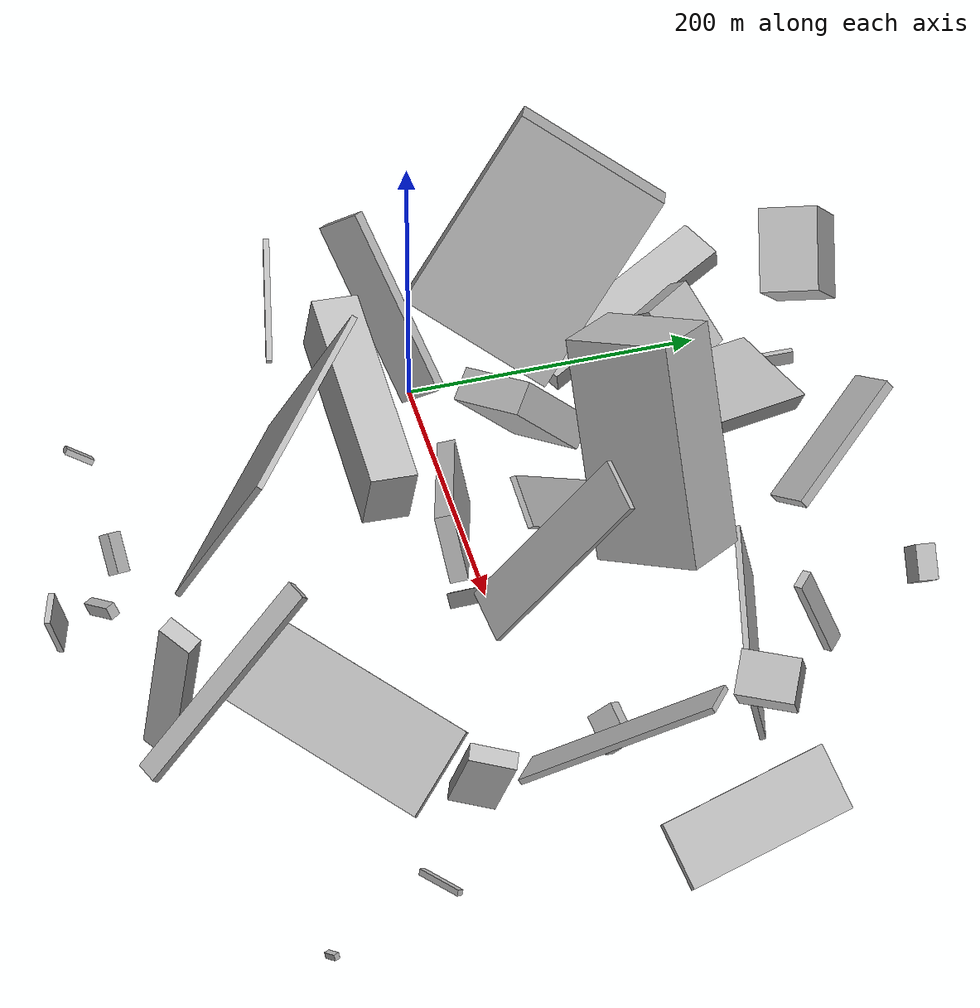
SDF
<sdf version="1.6">
 <world name="default">
  <scene>
   <sky><clouds><speed>12</speed></clouds></sky>
   <ambient>0.4 0.4 0.4 1</ambient>
   <background>0.7 0.7 0.7 1</background>
   <shadows>1</shadows>
  </scene>
  <gravity>0 0 -9.8066</gravity>
  <magnetic_field>6e-06 2.3e-05 -4.2e-05</magnetic_field>
  <physics default="0" name="default_physics" type="ode">
   <ode>
    <solver>
     <type>quick</type>
     <iters>10</iters>
     <sor>1.0</sor>
     <use_dynamic_moi_rescaling>0</use_dynamic_moi_rescaling>
    </solver>
    <constraints>
     <cfm>0</cfm>
     <erp>0.2</erp>
     <contact_max_correcting_vel>100</contact_max_correcting_vel>
     <contact_surface_layer>0.001</contact_surface_layer>
    </constraints>
   </ode>
   <max_step_size>0.004</max_step_size>
   <real_time_factor>1</real_time_factor>
   <real_time_update_rate>250</real_time_update_rate>
  </physics>
  <light name="sun" type="directional">
   <pose>0 0 10 0 0 0</pose>
   <diffuse>0.8 0.8 0.8 1</diffuse>
   <specular>0.2 0.2 0.2 1</specular>
   <attenuation>
    <range>1000</range>
    <constant>0.9</constant>
    <linear>0.01</linear>
    <quadratic>0.001</quadratic>
   </attenuation>
   <direction>-0.5 0.1 -0.9</direction>
  </light>
  <model name="building_1">
   <static>0</static>
   <pose>368.5033524751293 35.30121803742265 35.8175464343306 2.230401912184545 -0.48210592562835736 -2.916389494576852</pose>
   <link name="link">
    <gravity>0</gravity>
    <pose>0 0 4.5 0 0 0</pose>
    <collision name="collision"><geometry><box><size>27 20 9</size></box></geometry></collision>
    <visual name="visual">
     <cast_shadows>0</cast_shadows>
     <geometry><box><size>27 20 9</size></box></geometry>
     <material>
      <script>
       <uri>model://HANNAS_wall/materials/scripts</uri>
       <uri>model://HANNAS_wall/materials/textures</uri>
       <name>vrc/HANNAS_wall</name>
      </script>
     </material>
    </visual>
   </link>
  </model>
  <model name="building_2">
   <static>0</static>
   <pose>279.30642222531316 99.32296282166375 92.7133927548016 -0.2856254638837341 -0.3404653738204558 0.7963929807629283</pose>
   <link name="link">
    <gravity>0</gravity>
    <pose>0 0 75.0 0 0 0</pose>
    <collision name="collision"><geometry><box><size>75 50 150</size></box></geometry></collision>
    <visual name="visual">
     <cast_shadows>0</cast_shadows>
     <geometry><box><size>75 50 150</size></box></geometry>
     <material>
      <script>
       <uri>model://HANNAS_wall/materials/scripts</uri>
       <uri>model://HANNAS_wall/materials/textures</uri>
       <name>vrc/HANNAS_wall</name>
      </script>
     </material>
    </visual>
   </link>
  </model>
  <model name="building_3">
   <static>0</static>
   <pose>379.7917114859629 139.95422127225987 58.4629991331154 0.0644120207506245 -0.6921549651877645 2.6517029182438825</pose>
   <link name="link">
    <gravity>0</gravity>
    <pose>0 0 42.0 0 0 0</pose>
    <collision name="collision"><geometry><box><size>29 38 84</size></box></geometry></collision>
    <visual name="visual">
     <cast_shadows>0</cast_shadows>
     <geometry><box><size>29 38 84</size></box></geometry>
     <material>
      <script>
       <uri>model://HANNAS_wall/materials/scripts</uri>
       <uri>model://HANNAS_wall/materials/textures</uri>
       <name>vrc/HANNAS_wall</name>
      </script>
     </material>
    </visual>
   </link>
  </model>
  <model name="building_4">
   <static>0</static>
   <pose>173.51408678652197 -165.7799642597068 95.36331107632384 0.4645678751636448 -0.10395964688641547 2.4911250039883495</pose>
   <link name="link">
    <gravity>0</gravity>
    <pose>0 0 75.0 0 0 0</pose>
    <collision name="collision"><geometry><box><size>150 4 150</size></box></geometry></collision>
    <visual name="visual">
     <cast_shadows>0</cast_shadows>
     <geometry><box><size>150 4 150</size></box></geometry>
     <material>
      <script>
       <uri>model://HANNAS_wall/materials/scripts</uri>
       <uri>model://HANNAS_wall/materials/textures</uri>
       <name>vrc/HANNAS_wall</name>
      </script>
     </material>
    </visual>
   </link>
  </model>
  <model name="building_5">
   <static>0</static>
   <pose>267.44766242236796 -6.617918526162127 65.76948687707505 -0.3078493117425604 -0.7458240874777977 0.5471550347173005</pose>
   <link name="link">
    <gravity>0</gravity>
    <pose>0 0 5.0 0 0 0</pose>
    <collision name="collision"><geometry><box><size>120 4 10</size></box></geometry></collision>
    <visual name="visual">
     <cast_shadows>0</cast_shadows>
     <geometry><box><size>120 4 10</size></box></geometry>
     <material>
      <script>
       <uri>model://HANNAS_wall/materials/scripts</uri>
       <uri>model://HANNAS_wall/materials/textures</uri>
       <name>vrc/HANNAS_wall</name>
      </script>
     </material>
    </visual>
   </link>
  </model>
  <model name="building_6">
   <static>0</static>
   <pose>-29.662922828063284 147.30654249621313 29.4463797755618 2.1488239937475586 1.3401140691852074 2.613526375298742</pose>
   <link name="link">
    <gravity>0</gravity>
    <pose>0 0 15.5 0 0 0</pose>
    <collision name="collision"><geometry><box><size>16 148 31</size></box></geometry></collision>
    <visual name="visual">
     <cast_shadows>0</cast_shadows>
     <geometry><box><size>16 148 31</size></box></geometry>
     <material>
      <script>
       <uri>model://HANNAS_wall/materials/scripts</uri>
       <uri>model://HANNAS_wall/materials/textures</uri>
       <name>vrc/HANNAS_wall</name>
      </script>
     </material>
    </visual>
   </link>
  </model>
  <model name="building_7">
   <static>0</static>
   <pose>285.38903898690376 -21.308937859529156 69.86230749342491 -0.5027916887514954 0.31846515942260917 0.17072154893904773</pose>
   <link name="link">
    <gravity>0</gravity>
    <pose>0 0 75.0 0 0 0</pose>
    <collision name="collision"><geometry><box><size>36 4 150</size></box></geometry></collision>
    <visual name="visual">
     <cast_shadows>0</cast_shadows>
     <geometry><box><size>36 4 150</size></box></geometry>
     <material>
      <script>
       <uri>model://HANNAS_wall/materials/scripts</uri>
       <uri>model://HANNAS_wall/materials/textures</uri>
       <name>vrc/HANNAS_wall</name>
      </script>
     </material>
    </visual>
   </link>
  </model>
  <model name="building_8">
   <static>0</static>
   <pose>356.30566683642326 -149.13170955440162 47.47556087167889 -0.164138484170848 -0.9362704648529782 -0.7552215979557438</pose>
   <link name="link">
    <gravity>0</gravity>
    <pose>0 0 31.0 0 0 0</pose>
    <collision name="collision"><geometry><box><size>4 150 62</size></box></geometry></collision>
    <visual name="visual">
     <cast_shadows>0</cast_shadows>
     <geometry><box><size>4 150 62</size></box></geometry>
     <material>
      <script>
       <uri>model://HANNAS_wall/materials/scripts</uri>
       <uri>model://HANNAS_wall/materials/textures</uri>
       <name>vrc/HANNAS_wall</name>
      </script>
     </material>
    </visual>
   </link>
  </model>
  <model name="building_9">
   <static>0</static>
   <pose>443.63275743296657 -105.83936040931903 22.90414573769005 -0.9883332245180847 1.0185337467499842 -0.6017677650724107</pose>
   <link name="link">
    <gravity>0</gravity>
    <pose>0 0 19.0 0 0 0</pose>
    <collision name="collision"><geometry><box><size>4 4 38</size></box></geometry></collision>
    <visual name="visual">
     <cast_shadows>0</cast_shadows>
     <geometry><box><size>4 4 38</size></box></geometry>
     <material>
      <script>
       <uri>model://HANNAS_wall/materials/scripts</uri>
       <uri>model://HANNAS_wall/materials/textures</uri>
       <name>vrc/HANNAS_wall</name>
      </script>
     </material>
    </visual>
   </link>
  </model>
  <model name="building_10">
   <static>0</static>
   <pose>33.232683320348826 127.5729253447126 92.99946740410063 1.0477775460437204 -0.4849758505755737 -0.3273325781753477</pose>
   <link name="link">
    <gravity>0</gravity>
    <pose>0 0 55.5 0 0 0</pose>
    <collision name="collision"><geometry><box><size>30 150 111</size></box></geometry></collision>
    <visual name="visual">
     <cast_shadows>0</cast_shadows>
     <geometry><box><size>30 150 111</size></box></geometry>
     <material>
      <script>
       <uri>model://HANNAS_wall/materials/scripts</uri>
       <uri>model://HANNAS_wall/materials/textures</uri>
       <name>vrc/HANNAS_wall</name>
      </script>
     </material>
    </visual>
   </link>
  </model>
  <model name="building_11">
   <static>0</static>
   <pose>41.07342445612246 260.906477510649 63.46016151016516 0.28333764542863255 -0.8070458459715475 -0.6227348184132776</pose>
   <link name="link">
    <gravity>0</gravity>
    <pose>0 0 28.5 0 0 0</pose>
    <collision name="collision"><geometry><box><size>60 40 57</size></box></geometry></collision>
    <visual name="visual">
     <cast_shadows>0</cast_shadows>
     <geometry><box><size>60 40 57</size></box></geometry>
     <material>
      <script>
       <uri>model://HANNAS_wall/materials/scripts</uri>
       <uri>model://HANNAS_wall/materials/textures</uri>
       <name>vrc/HANNAS_wall</name>
      </script>
     </material>
    </visual>
   </link>
  </model>
  <model name="building_12">
   <static>0</static>
   <pose>34.78827208459839 166.01391653564284 35.965898747845486 1.4704161857099776 -0.854182269020925 -2.483450633092087</pose>
   <link name="link">
    <gravity>0</gravity>
    <pose>0 0 19.5 0 0 0</pose>
    <collision name="collision"><geometry><box><size>49 19 39</size></box></geometry></collision>
    <visual name="visual">
     <cast_shadows>0</cast_shadows>
     <geometry><box><size>49 19 39</size></box></geometry>
     <material>
      <script>
       <uri>model://HANNAS_wall/materials/scripts</uri>
       <uri>model://HANNAS_wall/materials/textures</uri>
       <name>vrc/HANNAS_wall</name>
      </script>
     </material>
    </visual>
   </link>
  </model>
  <model name="building_13">
   <static>0</static>
   <pose>405.829296438694 -57.09704023948896 48.76759107157136 1.2730442627327885 -0.24674278311265266 -1.8743712997540734</pose>
   <link name="link">
    <gravity>0</gravity>
    <pose>0 0 6.0 0 0 0</pose>
    <collision name="collision"><geometry><box><size>31 61 12</size></box></geometry></collision>
    <visual name="visual">
     <cast_shadows>0</cast_shadows>
     <geometry><box><size>31 61 12</size></box></geometry>
     <material>
      <script>
       <uri>model://HANNAS_wall/materials/scripts</uri>
       <uri>model://HANNAS_wall/materials/textures</uri>
       <name>vrc/HANNAS_wall</name>
      </script>
     </material>
    </visual>
   </link>
  </model>
  <model name="building_14">
   <static>0</static>
   <pose>170.4706290517066 -252.21223607718053 22.052147547663946 -1.4548736349369589 -0.5106858439196295 0.46908917289657015</pose>
   <link name="link">
    <gravity>0</gravity>
    <pose>0 0 3.5 0 0 0</pose>
    <collision name="collision"><geometry><box><size>27 9 7</size></box></geometry></collision>
    <visual name="visual">
     <cast_shadows>0</cast_shadows>
     <geometry><box><size>27 9 7</size></box></geometry>
     <material>
      <script>
       <uri>model://HANNAS_wall/materials/scripts</uri>
       <uri>model://HANNAS_wall/materials/textures</uri>
       <name>vrc/HANNAS_wall</name>
      </script>
     </material>
    </visual>
   </link>
  </model>
  <model name="building_15">
   <static>0</static>
   <pose>138.63902772350616 -5.212328211370107 55.49999300961923 -0.4502455064453886 -1.0903086821714814 -2.9071619438714142</pose>
   <link name="link">
    <gravity>0</gravity>
    <pose>0 0 71.5 0 0 0</pose>
    <collision name="collision"><geometry><box><size>45 12 143</size></box></geometry></collision>
    <visual name="visual">
     <cast_shadows>0</cast_shadows>
     <geometry><box><size>45 12 143</size></box></geometry>
     <material>
      <script>
       <uri>model://HANNAS_wall/materials/scripts</uri>
       <uri>model://HANNAS_wall/materials/textures</uri>
       <name>vrc/HANNAS_wall</name>
      </script>
     </material>
    </visual>
   </link>
  </model>
  <model name="building_16">
   <static>0</static>
   <pose>318.6284701847678 191.6087448091872 50.56083033413843 2.2239438773064513 -1.228448825042264 -1.465079806744346</pose>
   <link name="link">
    <gravity>0</gravity>
    <pose>0 0 3.0 0 0 0</pose>
    <collision name="collision"><geometry><box><size>71 13 6</size></box></geometry></collision>
    <visual name="visual">
     <cast_shadows>0</cast_shadows>
     <geometry><box><size>71 13 6</size></box></geometry>
     <material>
      <script>
       <uri>model://HANNAS_wall/materials/scripts</uri>
       <uri>model://HANNAS_wall/materials/textures</uri>
       <name>vrc/HANNAS_wall</name>
      </script>
     </material>
    </visual>
   </link>
  </model>
  <model name="building_17">
   <static>0</static>
   <pose>214.21446802299306 -283.04336652945494 50.401314690437715 0.02693648610653824 0.44770823697149015 -0.39284683402587045</pose>
   <link name="link">
    <gravity>0</gravity>
    <pose>0 0 28.5 0 0 0</pose>
    <collision name="collision"><geometry><box><size>20 4 57</size></box></geometry></collision>
    <visual name="visual">
     <cast_shadows>0</cast_shadows>
     <geometry><box><size>20 4 57</size></box></geometry>
     <material>
      <script>
       <uri>model://HANNAS_wall/materials/scripts</uri>
       <uri>model://HANNAS_wall/materials/textures</uri>
       <name>vrc/HANNAS_wall</name>
      </script>
     </material>
    </visual>
   </link>
  </model>
  <model name="building_18">
   <static>0</static>
   <pose>151.49908183355606 -51.43614719851925 55.462313633214976 1.3744266713431579 -0.08869664178350099 -1.530191082768263</pose>
   <link name="link">
    <gravity>0</gravity>
    <pose>0 0 75.0 0 0 0</pose>
    <collision name="collision"><geometry><box><size>32 46 150</size></box></geometry></collision>
    <visual name="visual">
     <cast_shadows>0</cast_shadows>
     <geometry><box><size>32 46 150</size></box></geometry>
     <material>
      <script>
       <uri>model://HANNAS_wall/materials/scripts</uri>
       <uri>model://HANNAS_wall/materials/textures</uri>
       <name>vrc/HANNAS_wall</name>
      </script>
     </material>
    </visual>
   </link>
  </model>
  <model name="building_19">
   <static>0</static>
   <pose>98.53155338964135 72.67984928179095 41.82199113716195 -0.4105975485172896 -0.6064776023047664 2.4322042452244137</pose>
   <link name="link">
    <gravity>0</gravity>
    <pose>0 0 34.0 0 0 0</pose>
    <collision name="collision"><geometry><box><size>23 57 68</size></box></geometry></collision>
    <visual name="visual">
     <cast_shadows>0</cast_shadows>
     <geometry><box><size>23 57 68</size></box></geometry>
     <material>
      <script>
       <uri>model://HANNAS_wall/materials/scripts</uri>
       <uri>model://HANNAS_wall/materials/textures</uri>
       <name>vrc/HANNAS_wall</name>
      </script>
     </material>
    </visual>
   </link>
  </model>
  <model name="building_20">
   <static>0</static>
   <pose>271.26384230287186 282.359928949308 26.300649391736712 1.5461008694234755 0.7455199986128398 -0.12071746947033635</pose>
   <link name="link">
    <gravity>0</gravity>
    <pose>0 0 6.5 0 0 0</pose>
    <collision name="collision"><geometry><box><size>24 39 13</size></box></geometry></collision>
    <visual name="visual">
     <cast_shadows>0</cast_shadows>
     <geometry><box><size>24 39 13</size></box></geometry>
     <material>
      <script>
       <uri>model://HANNAS_wall/materials/scripts</uri>
       <uri>model://HANNAS_wall/materials/textures</uri>
       <name>vrc/HANNAS_wall</name>
      </script>
     </material>
    </visual>
   </link>
  </model>
  <model name="building_21">
   <static>0</static>
   <pose>298.81490270166137 -225.95299475358377 76.77061021894805 2.0908867118816814 -1.265825363806151 0.13729803216179165</pose>
   <link name="link">
    <gravity>0</gravity>
    <pose>0 0 6.0 0 0 0</pose>
    <collision name="collision"><geometry><box><size>150 24 12</size></box></geometry></collision>
    <visual name="visual">
     <cast_shadows>0</cast_shadows>
     <geometry><box><size>150 24 12</size></box></geometry>
     <material>
      <script>
       <uri>model://HANNAS_wall/materials/scripts</uri>
       <uri>model://HANNAS_wall/materials/textures</uri>
       <name>vrc/HANNAS_wall</name>
      </script>
     </material>
    </visual>
   </link>
  </model>
  <model name="building_22">
   <static>0</static>
   <pose>98.1589916090113 189.11332033476182 40.67848710438221 -0.24288151114090425 -0.4175496823441905 -0.971490037683356</pose>
   <link name="link">
    <gravity>0</gravity>
    <pose>0 0 6.5 0 0 0</pose>
    <collision name="collision"><geometry><box><size>111 60 13</size></box></geometry></collision>
    <visual name="visual">
     <cast_shadows>0</cast_shadows>
     <geometry><box><size>111 60 13</size></box></geometry>
     <material>
      <script>
       <uri>model://HANNAS_wall/materials/scripts</uri>
       <uri>model://HANNAS_wall/materials/textures</uri>
       <name>vrc/HANNAS_wall</name>
      </script>
     </material>
    </visual>
   </link>
  </model>
  <model name="building_23">
   <static>0</static>
   <pose>491.2616268277245 -175.30171514052435 20.27871379728527 3.01111299512121 -0.42350097109180873 0.568286978478524</pose>
   <link name="link">
    <gravity>0</gravity>
    <pose>0 0 2.0 0 0 0</pose>
    <collision name="collision"><geometry><box><size>9 4 4</size></box></geometry></collision>
    <visual name="visual">
     <cast_shadows>0</cast_shadows>
     <geometry><box><size>9 4 4</size></box></geometry>
     <material>
      <script>
       <uri>model://HANNAS_wall/materials/scripts</uri>
       <uri>model://HANNAS_wall/materials/textures</uri>
       <name>vrc/HANNAS_wall</name>
      </script>
     </material>
    </visual>
   </link>
  </model>
  <model name="building_24">
   <static>0</static>
   <pose>208.81153012608138 48.32516882454007 81.11654885092587 2.327280764256276 -0.7204604453785629 -0.8198364137497879</pose>
   <link name="link">
    <gravity>0</gravity>
    <pose>0 0 2.0 0 0 0</pose>
    <collision name="collision"><geometry><box><size>120 35 4</size></box></geometry></collision>
    <visual name="visual">
     <cast_shadows>0</cast_shadows>
     <geometry><box><size>120 35 4</size></box></geometry>
     <material>
      <script>
       <uri>model://HANNAS_wall/materials/scripts</uri>
       <uri>model://HANNAS_wall/materials/textures</uri>
       <name>vrc/HANNAS_wall</name>
      </script>
     </material>
    </visual>
   </link>
  </model>
  <model name="building_25">
   <static>0</static>
   <pose>-23.86639413351847 -91.57929823992018 28.823793401229405 -0.16537378210358664 -1.0864785927173246 -0.03253262091729791</pose>
   <link name="link">
    <gravity>0</gravity>
    <pose>0 0 44.0 0 0 0</pose>
    <collision name="collision"><geometry><box><size>4 4 88</size></box></geometry></collision>
    <visual name="visual">
     <cast_shadows>0</cast_shadows>
     <geometry><box><size>4 4 88</size></box></geometry>
     <material>
      <script>
       <uri>model://HANNAS_wall/materials/scripts</uri>
       <uri>model://HANNAS_wall/materials/textures</uri>
       <name>vrc/HANNAS_wall</name>
      </script>
     </material>
    </visual>
   </link>
  </model>
  <model name="building_26">
   <static>0</static>
   <pose>48.280852930649836 239.05459044037144 20.953155678971996 3.068760708362803 -0.04643705876430762 1.51696867195608</pose>
   <link name="link">
    <gravity>0</gravity>
    <pose>0 0 5.0 0 0 0</pose>
    <collision name="collision"><geometry><box><size>34 4 10</size></box></geometry></collision>
    <visual name="visual">
     <cast_shadows>0</cast_shadows>
     <geometry><box><size>34 4 10</size></box></geometry>
     <material>
      <script>
       <uri>model://HANNAS_wall/materials/scripts</uri>
       <uri>model://HANNAS_wall/materials/textures</uri>
       <name>vrc/HANNAS_wall</name>
      </script>
     </material>
    </visual>
   </link>
  </model>
  <model name="building_27">
   <static>0</static>
   <pose>393.72860933327956 38.55830500152784 52.793346990082526 0.6477305252141358 -0.22576766725314976 -0.6007130129960119</pose>
   <link name="link">
    <gravity>0</gravity>
    <pose>0 0 2.0 0 0 0</pose>
    <collision name="collision"><geometry><box><size>28 150 4</size></box></geometry></collision>
    <visual name="visual">
     <cast_shadows>0</cast_shadows>
     <geometry><box><size>28 150 4</size></box></geometry>
     <material>
      <script>
       <uri>model://HANNAS_wall/materials/scripts</uri>
       <uri>model://HANNAS_wall/materials/textures</uri>
       <name>vrc/HANNAS_wall</name>
      </script>
     </material>
    </visual>
   </link>
  </model>
  <model name="building_28">
   <static>0</static>
   <pose>121.27508776381069 -226.51775348105477 22.58030371815199 -0.9684399282672886 0.5753850801249126 -2.1481904041631643</pose>
   <link name="link">
    <gravity>0</gravity>
    <pose>0 0 6.5 0 0 0</pose>
    <collision name="collision"><geometry><box><size>8 27 13</size></box></geometry></collision>
    <visual name="visual">
     <cast_shadows>0</cast_shadows>
     <geometry><box><size>8 27 13</size></box></geometry>
     <material>
      <script>
       <uri>model://HANNAS_wall/materials/scripts</uri>
       <uri>model://HANNAS_wall/materials/textures</uri>
       <name>vrc/HANNAS_wall</name>
      </script>
     </material>
    </visual>
   </link>
  </model>
  <model name="building_29">
   <static>0</static>
   <pose>178.30372162305713 244.3249913248286 56.110363074758425 0.551518675927473 0.38025772142597863 -0.9235751030440481</pose>
   <link name="link">
    <gravity>0</gravity>
    <pose>0 0 3.5 0 0 0</pose>
    <collision name="collision"><geometry><box><size>102 34 7</size></box></geometry></collision>
    <visual name="visual">
     <cast_shadows>0</cast_shadows>
     <geometry><box><size>102 34 7</size></box></geometry>
     <material>
      <script>
       <uri>model://HANNAS_wall/materials/scripts</uri>
       <uri>model://HANNAS_wall/materials/textures</uri>
       <name>vrc/HANNAS_wall</name>
      </script>
     </material>
    </visual>
   </link>
  </model>
  <model name="building_30">
   <static>0</static>
   <pose>230.83052597946664 166.52967333214966 28.06950900256713 1.5548022364576388 -0.21395409869788443 1.3358056693494587</pose>
   <link name="link">
    <gravity>0</gravity>
    <pose>0 0 75.0 0 0 0</pose>
    <collision name="collision"><geometry><box><size>4 46 150</size></box></geometry></collision>
    <visual name="visual">
     <cast_shadows>0</cast_shadows>
     <geometry><box><size>4 46 150</size></box></geometry>
     <material>
      <script>
       <uri>model://HANNAS_wall/materials/scripts</uri>
       <uri>model://HANNAS_wall/materials/textures</uri>
       <name>vrc/HANNAS_wall</name>
      </script>
     </material>
    </visual>
   </link>
  </model>
  <model name="building_31">
   <static>0</static>
   <pose>450.7232851284949 110.51999119149669 19.746636410877606 -3.1046384918557575 -0.6774466889991976 -2.8130810329118416</pose>
   <link name="link">
    <gravity>0</gravity>
    <pose>0 0 2.0 0 0 0</pose>
    <collision name="collision"><geometry><box><size>45 125 4</size></box></geometry></collision>
    <visual name="visual">
     <cast_shadows>0</cast_shadows>
     <geometry><box><size>45 125 4</size></box></geometry>
     <material>
      <script>
       <uri>model://HANNAS_wall/materials/scripts</uri>
       <uri>model://HANNAS_wall/materials/textures</uri>
       <name>vrc/HANNAS_wall</name>
      </script>
     </material>
    </visual>
   </link>
  </model>
  <model name="building_32">
   <static>0</static>
   <pose>-4.152507082926618 -29.412066849213936 75.76387031231673 0.36513196011826615 -0.8338040668029685 -2.723088447444306</pose>
   <link name="link">
    <gravity>0</gravity>
    <pose>0 0 17.0 0 0 0</pose>
    <collision name="collision"><geometry><box><size>130 8 34</size></box></geometry></collision>
    <visual name="visual">
     <cast_shadows>0</cast_shadows>
     <geometry><box><size>130 8 34</size></box></geometry>
     <material>
      <script>
       <uri>model://HANNAS_wall/materials/scripts</uri>
       <uri>model://HANNAS_wall/materials/textures</uri>
       <name>vrc/HANNAS_wall</name>
      </script>
     </material>
    </visual>
   </link>
  </model>
  <model name="building_33">
   <static>0</static>
   <pose>357.79012064349274 -204.47523413361924 125.88571260623524 1.4795092653732551 -0.8336212428642704 -1.1363958096114375</pose>
   <link name="link">
    <gravity>0</gravity>
    <pose>0 0 7.5 0 0 0</pose>
    <collision name="collision"><geometry><box><size>6 150 15</size></box></geometry></collision>
    <visual name="visual">
     <cast_shadows>0</cast_shadows>
     <geometry><box><size>6 150 15</size></box></geometry>
     <material>
      <script>
       <uri>model://HANNAS_wall/materials/scripts</uri>
       <uri>model://HANNAS_wall/materials/textures</uri>
       <name>vrc/HANNAS_wall</name>
      </script>
     </material>
    </visual>
   </link>
  </model>
  <model name="building_34">
   <static>0</static>
   <pose>32.120425554465825 -226.26369918408446 21.7617789302955 -0.8005103198500048 -0.8226221911536301 2.2115098526279855</pose>
   <link name="link">
    <gravity>0</gravity>
    <pose>0 0 10.0 0 0 0</pose>
    <collision name="collision"><geometry><box><size>4 10 20</size></box></geometry></collision>
    <visual name="visual">
     <cast_shadows>0</cast_shadows>
     <geometry><box><size>4 10 20</size></box></geometry>
     <material>
      <script>
       <uri>model://HANNAS_wall/materials/scripts</uri>
       <uri>model://HANNAS_wall/materials/textures</uri>
       <name>vrc/HANNAS_wall</name>
      </script>
     </material>
    </visual>
   </link>
  </model>
 </world>
</sdf>
